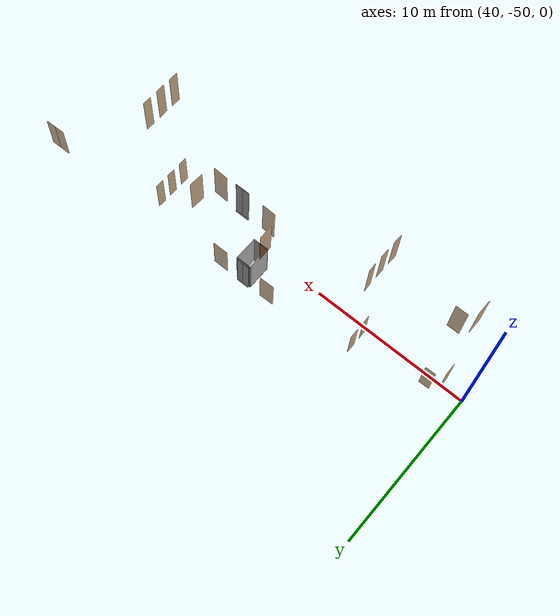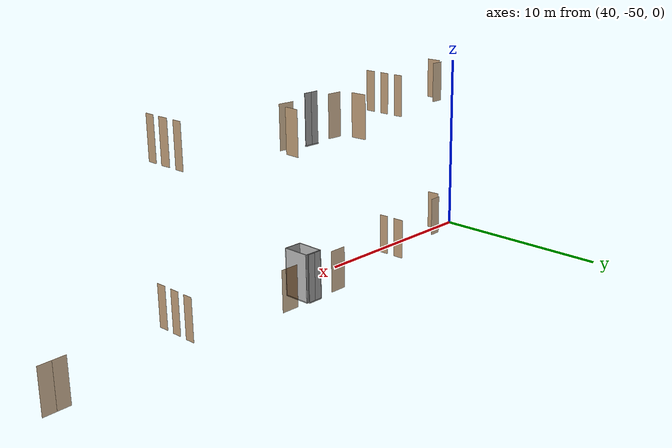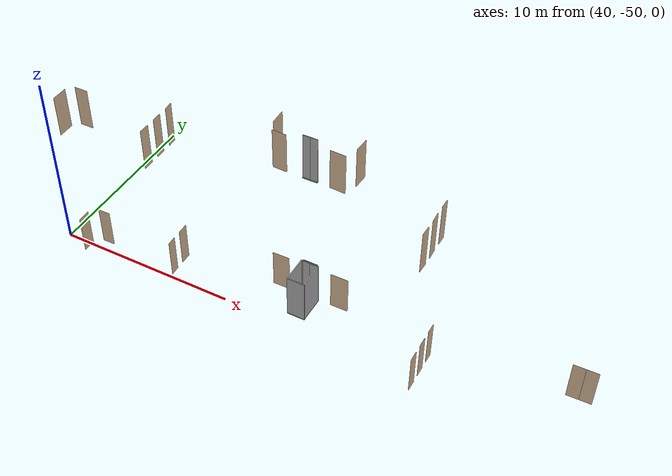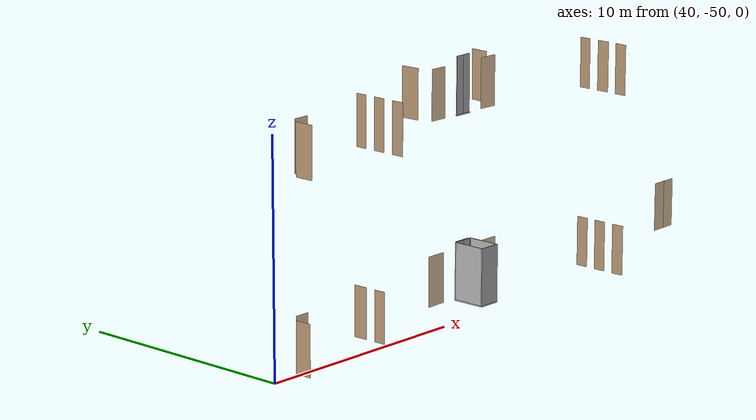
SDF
<sdf version="1.7">
 <world name="sim_world">
  <model name="TD1004CA">
   <pose>41.418329006971035 -50.19107119581413 0.0 0 0 1.5993775933365804</pose>
   <link name="right">
    <pose>0 0 1.11 0 0 0</pose>
    <visual name="right_visual">
     <geometry><box><size>0.7180729002156033 0.03 2.2</size></box></geometry>
     <material>
      <ambient>0.5 0.25 0 0.6</ambient>
      <diffuse>0.5 0.25 0 0.6</diffuse>
      <pbr><metal><metalness>0.0</metalness></metal></pbr>
     </material>
    </visual>
    <collision name="right_collision">
     <geometry><box><size>0.7180729002156033 0.03 2.2</size></box></geometry>
     <surface><contact><collide_bitmask>0x02</collide_bitmask></contact></surface>
    </collision>
    <inertial>
     <mass>50.0</mass>
     <inertia><ixx>20.17041666666667</ixx><iyy>22.315119541766872</iyy><izz>2.1522028751001994</izz></inertia>
    </inertial>
   </link>
   <joint name="right_joint" type="revolute">
    <parent>world</parent>
    <child>right</child>
    <axis><xyz>0 0 1</xyz><limit><lower>0</lower><upper>1.57</upper></limit></axis>
    <pose>0.36403645010780167 0 0 0 0 0</pose>
   </joint>
   <plugin name="register_component" filename="libregister_component.so">
    <component name="Door">
     <v_max_door>0.5</v_max_door>
     <a_max_door>0.3</a_max_door>
     <a_nom_door>0.15</a_nom_door>
     <dx_min_door>0.01</dx_min_door>
     <f_max_door>500.0</f_max_door>
     <ros_interface>true</ros_interface>
     <door name="TD1004CA" type="SwingDoor" left_joint_name="empty_joint" right_joint_name="right_joint"/>
    </component>
   </plugin>
  </model>
  <model name="TD1003CI">
   <pose>42.161714970803274 -49.42168282745601 0.0 0 0 -3.1108152612975006</pose>
   <link name="right">
    <pose>0 0 1.11 0 0 0</pose>
    <visual name="right_visual">
     <geometry><box><size>0.6661358327263901 0.03 2.2</size></box></geometry>
     <material>
      <ambient>0.5 0.25 0 0.6</ambient>
      <diffuse>0.5 0.25 0 0.6</diffuse>
      <pbr><metal><metalness>0.0</metalness></metal></pbr>
     </material>
    </visual>
    <collision name="right_collision">
     <geometry><box><size>0.6661358327263901 0.03 2.2</size></box></geometry>
     <surface><contact><collide_bitmask>0x02</collide_bitmask></contact></surface>
    </collision>
    <inertial>
     <mass>50.0</mass>
     <inertia><ixx>20.17041666666667</ixx><iyy>22.015570615175342</iyy><izz>1.8526539485086717</izz></inertia>
    </inertial>
   </link>
   <joint name="right_joint" type="revolute">
    <parent>world</parent>
    <child>right</child>
    <axis><xyz>0 0 1</xyz><limit><lower>0</lower><upper>1.57</upper></limit></axis>
    <pose>0.33806791636319505 0 0 0 0 0</pose>
   </joint>
   <plugin name="register_component" filename="libregister_component.so">
    <component name="Door">
     <v_max_door>0.5</v_max_door>
     <a_max_door>0.3</a_max_door>
     <a_nom_door>0.15</a_nom_door>
     <dx_min_door>0.01</dx_min_door>
     <f_max_door>500.0</f_max_door>
     <ros_interface>true</ros_interface>
     <door name="TD1003CI" type="SwingDoor" left_joint_name="empty_joint" right_joint_name="right_joint"/>
    </component>
   </plugin>
  </model>
  <model name="bano02">
   <pose>46.556525343689856 -48.4981205128844 0.0 0 0 1.5918249008363818</pose>
   <link name="right">
    <pose>0 0 1.11 0 0 0</pose>
    <visual name="right_visual">
     <geometry><box><size>0.6101771898056049 0.03 2.2</size></box></geometry>
     <material>
      <ambient>0.5 0.25 0 0.6</ambient>
      <diffuse>0.5 0.25 0 0.6</diffuse>
      <pbr><metal><metalness>0.0</metalness></metal></pbr>
     </material>
    </visual>
    <collision name="right_collision">
     <geometry><box><size>0.6101771898056049 0.03 2.2</size></box></geometry>
     <surface><contact><collide_bitmask>0x02</collide_bitmask></contact></surface>
    </collision>
    <inertial>
     <mass>50.0</mass>
     <inertia><ixx>20.17041666666667</ixx><iyy>21.717984178996108</iyy><izz>1.5550675123294382</izz></inertia>
    </inertial>
   </link>
   <joint name="right_joint" type="revolute">
    <parent>world</parent>
    <child>right</child>
    <axis><xyz>0 0 -1</xyz><limit><lower>0</lower><upper>1.57</upper></limit></axis>
    <pose>0.31008859490280244 0 0 0 0 0</pose>
   </joint>
   <plugin name="register_component" filename="libregister_component.so">
    <component name="Door">
     <v_max_door>0.5</v_max_door>
     <a_max_door>0.3</a_max_door>
     <a_nom_door>0.15</a_nom_door>
     <dx_min_door>0.01</dx_min_door>
     <f_max_door>500.0</f_max_door>
     <ros_interface>true</ros_interface>
     <door name="bano02" type="SwingDoor" left_joint_name="empty_joint" right_joint_name="right_joint"/>
    </component>
   </plugin>
  </model>
  <model name="bano03">
   <pose>46.57414458197455 -49.527454369388025 0.0 0 0 1.6131373529821114</pose>
   <link name="right">
    <pose>0 0 1.11 0 0 0</pose>
    <visual name="right_visual">
     <geometry><box><size>0.5144235144770443 0.03 2.2</size></box></geometry>
     <material>
      <ambient>0.5 0.25 0 0.6</ambient>
      <diffuse>0.5 0.25 0 0.6</diffuse>
      <pbr><metal><metalness>0.0</metalness></metal></pbr>
     </material>
    </visual>
    <collision name="right_collision">
     <geometry><box><size>0.5144235144770443 0.03 2.2</size></box></geometry>
     <surface><contact><collide_bitmask>0x02</collide_bitmask></contact></surface>
    </collision>
    <inertial>
     <mass>50.0</mass>
     <inertia><ixx>20.17041666666667</ixx><iyy>21.269298134362145</iyy><izz>1.1063814676954742</izz></inertia>
    </inertial>
   </link>
   <joint name="right_joint" type="revolute">
    <parent>world</parent>
    <child>right</child>
    <axis><xyz>0 0 -1</xyz><limit><lower>0</lower><upper>1.57</upper></limit></axis>
    <pose>0.26221175723852214 0 0 0 0 0</pose>
   </joint>
   <plugin name="register_component" filename="libregister_component.so">
    <component name="Door">
     <v_max_door>0.5</v_max_door>
     <a_max_door>0.3</a_max_door>
     <a_nom_door>0.15</a_nom_door>
     <dx_min_door>0.01</dx_min_door>
     <f_max_door>500.0</f_max_door>
     <ros_interface>true</ros_interface>
     <door name="bano03" type="SwingDoor" left_joint_name="empty_joint" right_joint_name="right_joint"/>
    </component>
   </plugin>
  </model>
  <model name="bano05">
   <pose>52.06670083466635 -47.72443394818039 0.0 0 0 -3.1200870272772754</pose>
   <link name="right">
    <pose>0 0 1.11 0 0 0</pose>
    <visual name="right_visual">
     <geometry><box><size>0.9377301620501713 0.03 2.2</size></box></geometry>
     <material>
      <ambient>0.5 0.25 0 0.6</ambient>
      <diffuse>0.5 0.25 0 0.6</diffuse>
      <pbr><metal><metalness>0.0</metalness></metal></pbr>
     </material>
    </visual>
    <collision name="right_collision">
     <geometry><box><size>0.9377301620501713 0.03 2.2</size></box></geometry>
     <surface><contact><collide_bitmask>0x02</collide_bitmask></contact></surface>
    </collision>
    <inertial>
     <mass>50.0</mass>
     <inertia><ixx>20.17041666666667</ixx><iyy>23.830574403411006</iyy><izz>3.6676577367443364</izz></inertia>
    </inertial>
   </link>
   <joint name="right_joint" type="revolute">
    <parent>world</parent>
    <child>right</child>
    <axis><xyz>0 0 -1</xyz><limit><lower>0</lower><upper>1.57</upper></limit></axis>
    <pose>0.4738650810250857 0 0 0 0 0</pose>
   </joint>
   <plugin name="register_component" filename="libregister_component.so">
    <component name="Door">
     <v_max_door>0.5</v_max_door>
     <a_max_door>0.3</a_max_door>
     <a_nom_door>0.15</a_nom_door>
     <dx_min_door>0.01</dx_min_door>
     <f_max_door>500.0</f_max_door>
     <ros_interface>true</ros_interface>
     <door name="bano05" type="SwingDoor" left_joint_name="empty_joint" right_joint_name="right_joint"/>
    </component>
   </plugin>
  </model>
  <model name="bano06">
   <pose>55.41423266186635 -47.68037463002387 0.0 0 0 0.0023663209530105163</pose>
   <link name="right">
    <pose>0 0 1.11 0 0 0</pose>
    <visual name="right_visual">
     <geometry><box><size>0.976455656863217 0.03 2.2</size></box></geometry>
     <material>
      <ambient>0.5 0.25 0 0.6</ambient>
      <diffuse>0.5 0.25 0 0.6</diffuse>
      <pbr><metal><metalness>0.0</metalness></metal></pbr>
     </material>
    </visual>
    <collision name="right_collision">
     <geometry><box><size>0.976455656863217 0.03 2.2</size></box></geometry>
     <surface><contact><collide_bitmask>0x02</collide_bitmask></contact></surface>
    </collision>
    <inertial>
     <mass>50.0</mass>
     <inertia><ixx>20.17041666666667</ixx><iyy>24.139440207584073</iyy><izz>3.9765235409174027</izz></inertia>
    </inertial>
   </link>
   <joint name="right_joint" type="revolute">
    <parent>world</parent>
    <child>right</child>
    <axis><xyz>0 0 1</xyz><limit><lower>0</lower><upper>1.57</upper></limit></axis>
    <pose>0.4932278284316085 0 0 0 0 0</pose>
   </joint>
   <plugin name="register_component" filename="libregister_component.so">
    <component name="Door">
     <v_max_door>0.5</v_max_door>
     <a_max_door>0.3</a_max_door>
     <a_nom_door>0.15</a_nom_door>
     <dx_min_door>0.01</dx_min_door>
     <f_max_door>500.0</f_max_door>
     <ros_interface>true</ros_interface>
     <door name="bano06" type="SwingDoor" left_joint_name="empty_joint" right_joint_name="right_joint"/>
    </component>
   </plugin>
  </model>
  <model name="bano08">
   <pose>60.78976126052451 -48.53715217578514 0.0 0 0 1.5717737241623335</pose>
   <link name="right">
    <pose>0 0 1.11 0 0 0</pose>
    <visual name="right_visual">
     <geometry><box><size>0.5411345257741597 0.03 2.2</size></box></geometry>
     <material>
      <ambient>0.5 0.25 0 0.6</ambient>
      <diffuse>0.5 0.25 0 0.6</diffuse>
      <pbr><metal><metalness>0.0</metalness></metal></pbr>
     </material>
    </visual>
    <collision name="right_collision">
     <geometry><box><size>0.5411345257741597 0.03 2.2</size></box></geometry>
     <surface><contact><collide_bitmask>0x02</collide_bitmask></contact></surface>
    </collision>
    <inertial>
     <mass>50.0</mass>
     <inertia><ixx>20.17041666666667</ixx><iyy>21.386777395770107</iyy><izz>1.2238607291034362</izz></inertia>
    </inertial>
   </link>
   <joint name="right_joint" type="revolute">
    <parent>world</parent>
    <child>right</child>
    <axis><xyz>0 0 1</xyz><limit><lower>0</lower><upper>1.57</upper></limit></axis>
    <pose>0.27556726288707983 0 0 0 0 0</pose>
   </joint>
   <plugin name="register_component" filename="libregister_component.so">
    <component name="Door">
     <v_max_door>0.5</v_max_door>
     <a_max_door>0.3</a_max_door>
     <a_nom_door>0.15</a_nom_door>
     <dx_min_door>0.01</dx_min_door>
     <f_max_door>500.0</f_max_door>
     <ros_interface>true</ros_interface>
     <door name="bano08" type="SwingDoor" left_joint_name="empty_joint" right_joint_name="right_joint"/>
    </component>
   </plugin>
  </model>
  <model name="bano09">
   <pose>60.79003059919892 -49.49870246589414 0.0 0 0 1.5707963267948966</pose>
   <link name="right">
    <pose>0 0 1.11 0 0 0</pose>
    <visual name="right_visual">
     <geometry><box><size>0.5286773488315057 0.03 2.2</size></box></geometry>
     <material>
      <ambient>0.5 0.25 0 0.6</ambient>
      <diffuse>0.5 0.25 0 0.6</diffuse>
      <pbr><metal><metalness>0.0</metalness></metal></pbr>
     </material>
    </visual>
    <collision name="right_collision">
     <geometry><box><size>0.5286773488315057 0.03 2.2</size></box></geometry>
     <surface><contact><collide_bitmask>0x02</collide_bitmask></contact></surface>
    </collision>
    <inertial>
     <mass>50.0</mass>
     <inertia><ixx>20.17041666666667</ixx><iyy>21.331248913197964</iyy><izz>1.16833224653129</izz></inertia>
    </inertial>
   </link>
   <joint name="right_joint" type="revolute">
    <parent>world</parent>
    <child>right</child>
    <axis><xyz>0 0 1</xyz><limit><lower>0</lower><upper>1.57</upper></limit></axis>
    <pose>0.2693386744157529 0 0 0 0 0</pose>
   </joint>
   <plugin name="register_component" filename="libregister_component.so">
    <component name="Door">
     <v_max_door>0.5</v_max_door>
     <a_max_door>0.3</a_max_door>
     <a_nom_door>0.15</a_nom_door>
     <dx_min_door>0.01</dx_min_door>
     <f_max_door>500.0</f_max_door>
     <ros_interface>true</ros_interface>
     <door name="bano09" type="SwingDoor" left_joint_name="empty_joint" right_joint_name="right_joint"/>
    </component>
   </plugin>
  </model>
  <model name="bano010">
   <pose>60.79214041881518 -50.483516884005795 0.0 0 0 1.5782784764305897</pose>
   <link name="right">
    <pose>0 0 1.11 0 0 0</pose>
    <visual name="right_visual">
     <geometry><box><size>0.553966080507234 0.03 2.2</size></box></geometry>
     <material>
      <ambient>0.5 0.25 0 0.6</ambient>
      <diffuse>0.5 0.25 0 0.6</diffuse>
      <pbr><metal><metalness>0.0</metalness></metal></pbr>
     </material>
    </visual>
    <collision name="right_collision">
     <geometry><box><size>0.553966080507234 0.03 2.2</size></box></geometry>
     <surface><contact><collide_bitmask>0x02</collide_bitmask></contact></surface>
    </collision>
    <inertial>
     <mass>50.0</mass>
     <inertia><ixx>20.17041666666667</ixx><iyy>21.44532674313562</iyy><izz>1.2824100764689468</izz></inertia>
    </inertial>
   </link>
   <joint name="right_joint" type="revolute">
    <parent>world</parent>
    <child>right</child>
    <axis><xyz>0 0 1</xyz><limit><lower>0</lower><upper>1.57</upper></limit></axis>
    <pose>0.281983040253617 0 0 0 0 0</pose>
   </joint>
   <plugin name="register_component" filename="libregister_component.so">
    <component name="Door">
     <v_max_door>0.5</v_max_door>
     <a_max_door>0.3</a_max_door>
     <a_nom_door>0.15</a_nom_door>
     <dx_min_door>0.01</dx_min_door>
     <f_max_door>500.0</f_max_door>
     <ros_interface>true</ros_interface>
     <door name="bano010" type="SwingDoor" left_joint_name="empty_joint" right_joint_name="right_joint"/>
    </component>
   </plugin>
  </model>
  <model name="TD0001EC1">
   <pose>68.0815447480926 -47.3850784408613 0.0 0 0 0.026534896190855972</pose>
   <link name="right">
    <pose>0.32252315344996946 0 1.11 0 0 0</pose>
    <visual name="right_visual">
     <geometry><box><size>0.6350463068999389 0.03 2.2</size></box></geometry>
     <material>
      <ambient>0.5 0.25 0 0.6</ambient>
      <diffuse>0.5 0.25 0 0.6</diffuse>
      <pbr><metal><metalness>0.0</metalness></metal></pbr>
     </material>
    </visual>
    <collision name="right_collision">
     <geometry><box><size>0.6350463068999389 0.03 2.2</size></box></geometry>
     <surface><contact><collide_bitmask>0x02</collide_bitmask></contact></surface>
    </collision>
    <inertial>
     <mass>50.0</mass>
     <inertia><ixx>20.17041666666667</ixx><iyy>21.847015882946888</iyy><izz>1.6840992162802142</izz></inertia>
    </inertial>
   </link>
   <joint name="right_joint" type="revolute">
    <parent>world</parent>
    <child>right</child>
    <axis><xyz>0 0 -1</xyz><limit><lower>0</lower><upper>1.57</upper></limit></axis>
    <pose>0.32252315344996946 0 0 0 0 0</pose>
   </joint>
   <link name="left">
    <pose>-0.32252315344996946 0 1.11 0 0 0</pose>
    <visual name="left_visual">
     <geometry><box><size>0.6350463068999389 0.03 2.2</size></box></geometry>
     <material>
      <ambient>0.5 0.25 0 0.6</ambient>
      <diffuse>0.5 0.25 0 0.6</diffuse>
      <pbr><metal><metalness>0.0</metalness></metal></pbr>
     </material>
    </visual>
    <collision name="left_collision">
     <geometry><box><size>0.6350463068999389 0.03 2.2</size></box></geometry>
     <surface><contact><collide_bitmask>0x02</collide_bitmask></contact></surface>
    </collision>
    <inertial>
     <mass>50.0</mass>
     <inertia><ixx>20.17041666666667</ixx><iyy>21.847015882946888</iyy><izz>1.6840992162802142</izz></inertia>
    </inertial>
   </link>
   <joint name="left_joint" type="revolute">
    <parent>world</parent>
    <child>left</child>
    <axis><xyz>0 0 -1</xyz><limit><lower>-1.57</lower><upper>0</upper></limit></axis>
    <pose>-0.32252315344996946 0 0 0 0 0</pose>
   </joint>
   <plugin name="register_component" filename="libregister_component.so">
    <component name="Door">
     <v_max_door>0.5</v_max_door>
     <a_max_door>0.3</a_max_door>
     <a_nom_door>0.15</a_nom_door>
     <dx_min_door>0.01</dx_min_door>
     <f_max_door>500.0</f_max_door>
     <ros_interface>true</ros_interface>
     <door name="TD0001EC1" type="DoubleSwingDoor" left_joint_name="left_joint" right_joint_name="right_joint"/>
    </component>
   </plugin>
  </model>
  <model name="TD1116CT">
   <pose>42.13165229551727 -49.469770444557135 8.0 0 0 -3.1414135882629983</pose>
   <link name="right">
    <pose>0 0 1.11 0 0 0</pose>
    <visual name="right_visual">
     <geometry><box><size>0.7019451403396002 0.03 2.2</size></box></geometry>
     <material>
      <ambient>0.5 0.25 0 0.6</ambient>
      <diffuse>0.5 0.25 0 0.6</diffuse>
      <pbr><metal><metalness>0.0</metalness></metal></pbr>
     </material>
    </visual>
    <collision name="right_collision">
     <geometry><box><size>0.7019451403396002 0.03 2.2</size></box></geometry>
     <surface><contact><collide_bitmask>0x02</collide_bitmask></contact></surface>
    </collision>
    <inertial>
     <mass>50.0</mass>
     <inertia><ixx>20.17041666666667</ixx><iyy>22.21969575019326</iyy><izz>2.056779083526588</izz></inertia>
    </inertial>
   </link>
   <joint name="right_joint" type="revolute">
    <parent>world</parent>
    <child>right</child>
    <axis><xyz>0 0 1</xyz><limit><lower>0</lower><upper>1.57</upper></limit></axis>
    <pose>0.3559725701698001 0 0 0 0 0</pose>
   </joint>
   <plugin name="register_component" filename="libregister_component.so">
    <component name="Door">
     <v_max_door>0.5</v_max_door>
     <a_max_door>0.3</a_max_door>
     <a_nom_door>0.15</a_nom_door>
     <dx_min_door>0.01</dx_min_door>
     <f_max_door>500.0</f_max_door>
     <ros_interface>true</ros_interface>
     <door name="TD1116CT" type="SwingDoor" left_joint_name="empty_joint" right_joint_name="right_joint"/>
    </component>
   </plugin>
  </model>
  <model name="TD0114CW">
   <pose>51.50515808954793 -46.74820920088596 8.0 0 0 1.6056425163225825</pose>
   <link name="right">
    <pose>0 0 1.11 0 0 0</pose>
    <visual name="right_visual">
     <geometry><box><size>0.8454856513248106 0.03 2.2</size></box></geometry>
     <material>
      <ambient>0.5 0.25 0 0.6</ambient>
      <diffuse>0.5 0.25 0 0.6</diffuse>
      <pbr><metal><metalness>0.0</metalness></metal></pbr>
     </material>
    </visual>
    <collision name="right_collision">
     <geometry><box><size>0.8454856513248106 0.03 2.2</size></box></geometry>
     <surface><contact><collide_bitmask>0x02</collide_bitmask></contact></surface>
    </collision>
    <inertial>
     <mass>50.0</mass>
     <inertia><ixx>20.17041666666667</ixx><iyy>23.145191610817253</iyy><izz>2.9822749441505803</izz></inertia>
    </inertial>
   </link>
   <joint name="right_joint" type="revolute">
    <parent>world</parent>
    <child>right</child>
    <axis><xyz>0 0 -1</xyz><limit><lower>0</lower><upper>1.57</upper></limit></axis>
    <pose>0.4277428256624053 0 0 0 0 0</pose>
   </joint>
   <plugin name="register_component" filename="libregister_component.so">
    <component name="Door">
     <v_max_door>0.5</v_max_door>
     <a_max_door>0.3</a_max_door>
     <a_nom_door>0.15</a_nom_door>
     <dx_min_door>0.01</dx_min_door>
     <f_max_door>500.0</f_max_door>
     <ros_interface>true</ros_interface>
     <door name="TD0114CW" type="SwingDoor" left_joint_name="empty_joint" right_joint_name="right_joint"/>
    </component>
   </plugin>
  </model>
  <model name="bano2">
   <pose>46.56346860594233 -48.55060622142908 8.0 0 0 1.6194787439386857</pose>
   <link name="right">
    <pose>0 0 1.11 0 0 0</pose>
    <visual name="right_visual">
     <geometry><box><size>0.47147375781130063 0.03 2.2</size></box></geometry>
     <material>
      <ambient>0.5 0.25 0 0.6</ambient>
      <diffuse>0.5 0.25 0 0.6</diffuse>
      <pbr><metal><metalness>0.0</metalness></metal></pbr>
     </material>
    </visual>
    <collision name="right_collision">
     <geometry><box><size>0.47147375781130063 0.03 2.2</size></box></geometry>
     <surface><contact><collide_bitmask>0x02</collide_bitmask></contact></surface>
    </collision>
    <inertial>
     <mass>50.0</mass>
     <inertia><ixx>20.17041666666667</ixx><iyy>21.092864601269625</iyy><izz>0.9299479346029541</izz></inertia>
    </inertial>
   </link>
   <joint name="right_joint" type="revolute">
    <parent>world</parent>
    <child>right</child>
    <axis><xyz>0 0 -1</xyz><limit><lower>0</lower><upper>1.57</upper></limit></axis>
    <pose>0.24073687890565032 0 0 0 0 0</pose>
   </joint>
   <plugin name="register_component" filename="libregister_component.so">
    <component name="Door">
     <v_max_door>0.5</v_max_door>
     <a_max_door>0.3</a_max_door>
     <a_nom_door>0.15</a_nom_door>
     <dx_min_door>0.01</dx_min_door>
     <f_max_door>500.0</f_max_door>
     <ros_interface>true</ros_interface>
     <door name="bano2" type="SwingDoor" left_joint_name="empty_joint" right_joint_name="right_joint"/>
    </component>
   </plugin>
  </model>
  <model name="bano3">
   <pose>46.57076823740256 -49.51671839086791 8.0 0 0 1.5714524499396092</pose>
   <link name="right">
    <pose>0 0 1.11 0 0 0</pose>
    <visual name="right_visual">
     <geometry><box><size>0.5075620440748119 0.03 2.2</size></box></geometry>
     <material>
      <ambient>0.5 0.25 0 0.6</ambient>
      <diffuse>0.5 0.25 0 0.6</diffuse>
      <pbr><metal><metalness>0.0</metalness></metal></pbr>
     </material>
    </visual>
    <collision name="right_collision">
     <geometry><box><size>0.5075620440748119 0.03 2.2</size></box></geometry>
     <surface><contact><collide_bitmask>0x02</collide_bitmask></contact></surface>
    </collision>
    <inertial>
     <mass>50.0</mass>
     <inertia><ixx>20.17041666666667</ixx><iyy>21.240080119105844</iyy><izz>1.077163452439172</izz></inertia>
    </inertial>
   </link>
   <joint name="right_joint" type="revolute">
    <parent>world</parent>
    <child>right</child>
    <axis><xyz>0 0 -1</xyz><limit><lower>0</lower><upper>1.57</upper></limit></axis>
    <pose>0.25878102203740594 0 0 0 0 0</pose>
   </joint>
   <plugin name="register_component" filename="libregister_component.so">
    <component name="Door">
     <v_max_door>0.5</v_max_door>
     <a_max_door>0.3</a_max_door>
     <a_nom_door>0.15</a_nom_door>
     <dx_min_door>0.01</dx_min_door>
     <f_max_door>500.0</f_max_door>
     <ros_interface>true</ros_interface>
     <door name="bano3" type="SwingDoor" left_joint_name="empty_joint" right_joint_name="right_joint"/>
    </component>
   </plugin>
  </model>
  <model name="bano4">
   <pose>46.563481016345676 -50.50018400156114 8.0 0 0 1.557244461655424</pose>
   <link name="right">
    <pose>0 0 1.11 0 0 0</pose>
    <visual name="right_visual">
     <geometry><box><size>0.5556274960112053 0.03 2.2</size></box></geometry>
     <material>
      <ambient>0.5 0.25 0 0.6</ambient>
      <diffuse>0.5 0.25 0 0.6</diffuse>
      <pbr><metal><metalness>0.0</metalness></metal></pbr>
     </material>
    </visual>
    <collision name="right_collision">
     <geometry><box><size>0.5556274960112053 0.03 2.2</size></box></geometry>
     <surface><contact><collide_bitmask>0x02</collide_bitmask></contact></surface>
    </collision>
    <inertial>
     <mass>50.0</mass>
     <inertia><ixx>20.17041666666667</ixx><iyy>21.45300797634868</iyy><izz>1.2900913096820084</izz></inertia>
    </inertial>
   </link>
   <joint name="right_joint" type="revolute">
    <parent>world</parent>
    <child>right</child>
    <axis><xyz>0 0 -1</xyz><limit><lower>0</lower><upper>1.57</upper></limit></axis>
    <pose>0.28281374800560266 0 0 0 0 0</pose>
   </joint>
   <plugin name="register_component" filename="libregister_component.so">
    <component name="Door">
     <v_max_door>0.5</v_max_door>
     <a_max_door>0.3</a_max_door>
     <a_nom_door>0.15</a_nom_door>
     <dx_min_door>0.01</dx_min_door>
     <f_max_door>500.0</f_max_door>
     <ros_interface>true</ros_interface>
     <door name="bano4" type="SwingDoor" left_joint_name="empty_joint" right_joint_name="right_joint"/>
    </component>
   </plugin>
  </model>
  <model name="bano5">
   <pose>52.148068485913775 -47.74097451939845 8.0 0 0 3.1065786581625146</pose>
   <link name="right">
    <pose>0 0 1.11 0 0 0</pose>
    <visual name="right_visual">
     <geometry><box><size>0.7657234564264961 0.03 2.2</size></box></geometry>
     <material>
      <ambient>0.5 0.25 0 0.6</ambient>
      <diffuse>0.5 0.25 0 0.6</diffuse>
      <pbr><metal><metalness>0.0</metalness></metal></pbr>
     </material>
    </visual>
    <collision name="right_collision">
     <geometry><box><size>0.7657234564264961 0.03 2.2</size></box></geometry>
     <surface><contact><collide_bitmask>0x02</collide_bitmask></contact></surface>
    </collision>
    <inertial>
     <mass>50.0</mass>
     <inertia><ixx>20.17041666666667</ixx><iyy>22.60971838217392</iyy><izz>2.44680171550725</izz></inertia>
    </inertial>
   </link>
   <joint name="right_joint" type="revolute">
    <parent>world</parent>
    <child>right</child>
    <axis><xyz>0 0 -1</xyz><limit><lower>0</lower><upper>1.57</upper></limit></axis>
    <pose>0.38786172821324805 0 0 0 0 0</pose>
   </joint>
   <plugin name="register_component" filename="libregister_component.so">
    <component name="Door">
     <v_max_door>0.5</v_max_door>
     <a_max_door>0.3</a_max_door>
     <a_nom_door>0.15</a_nom_door>
     <dx_min_door>0.01</dx_min_door>
     <f_max_door>500.0</f_max_door>
     <ros_interface>true</ros_interface>
     <door name="bano5" type="SwingDoor" left_joint_name="empty_joint" right_joint_name="right_joint"/>
    </component>
   </plugin>
  </model>
  <model name="bano6">
   <pose>55.234940433910175 -47.778894369654296 8.0 0 0 -0.04549059902802838</pose>
   <link name="right">
    <pose>0 0 1.11 0 0 0</pose>
    <visual name="right_visual">
     <geometry><box><size>0.8297533818517685 0.03 2.2</size></box></geometry>
     <material>
      <ambient>0.5 0.25 0 0.6</ambient>
      <diffuse>0.5 0.25 0 0.6</diffuse>
      <pbr><metal><metalness>0.0</metalness></metal></pbr>
     </material>
    </visual>
    <collision name="right_collision">
     <geometry><box><size>0.8297533818517685 0.03 2.2</size></box></geometry>
     <surface><contact><collide_bitmask>0x02</collide_bitmask></contact></surface>
    </collision>
    <inertial>
     <mass>50.0</mass>
     <inertia><ixx>20.17041666666667</ixx><iyy>23.035377811226866</iyy><izz>2.8724611445601953</izz></inertia>
    </inertial>
   </link>
   <joint name="right_joint" type="revolute">
    <parent>world</parent>
    <child>right</child>
    <axis><xyz>0 0 1</xyz><limit><lower>0</lower><upper>1.57</upper></limit></axis>
    <pose>0.41987669092588426 0 0 0 0 0</pose>
   </joint>
   <plugin name="register_component" filename="libregister_component.so">
    <component name="Door">
     <v_max_door>0.5</v_max_door>
     <a_max_door>0.3</a_max_door>
     <a_nom_door>0.15</a_nom_door>
     <dx_min_door>0.01</dx_min_door>
     <f_max_door>500.0</f_max_door>
     <ros_interface>true</ros_interface>
     <door name="bano6" type="SwingDoor" left_joint_name="empty_joint" right_joint_name="right_joint"/>
    </component>
   </plugin>
  </model>
  <model name="TD0115CW">
   <pose>55.88847397362011 -46.73766025088821 8.0 0 0 1.5145458440551605</pose>
   <link name="right">
    <pose>0 0 1.11 0 0 0</pose>
    <visual name="right_visual">
     <geometry><box><size>0.8030795554057361 0.03 2.2</size></box></geometry>
     <material>
      <ambient>0.5 0.25 0 0.6</ambient>
      <diffuse>0.5 0.25 0 0.6</diffuse>
      <pbr><metal><metalness>0.0</metalness></metal></pbr>
     </material>
    </visual>
    <collision name="right_collision">
     <geometry><box><size>0.8030795554057361 0.03 2.2</size></box></geometry>
     <surface><contact><collide_bitmask>0x02</collide_bitmask></contact></surface>
    </collision>
    <inertial>
     <mass>50.0</mass>
     <inertia><ixx>20.17041666666667</ixx><iyy>22.853903217961147</iyy><izz>2.690986551294478</izz></inertia>
    </inertial>
   </link>
   <joint name="right_joint" type="revolute">
    <parent>world</parent>
    <child>right</child>
    <axis><xyz>0 0 1</xyz><limit><lower>0</lower><upper>1.57</upper></limit></axis>
    <pose>0.40653977770286803 0 0 0 0 0</pose>
   </joint>
   <plugin name="register_component" filename="libregister_component.so">
    <component name="Door">
     <v_max_door>0.5</v_max_door>
     <a_max_door>0.3</a_max_door>
     <a_nom_door>0.15</a_nom_door>
     <dx_min_door>0.01</dx_min_door>
     <f_max_door>500.0</f_max_door>
     <ros_interface>true</ros_interface>
     <door name="TD0115CW" type="SwingDoor" left_joint_name="empty_joint" right_joint_name="right_joint"/>
    </component>
   </plugin>
  </model>
  <model name="bano8">
   <pose>60.781529853885814 -48.5473083155301 8.0 0 0 1.564084700622381</pose>
   <link name="right">
    <pose>0 0 1.11 0 0 0</pose>
    <visual name="right_visual">
     <geometry><box><size>0.5014238975936707 0.03 2.2</size></box></geometry>
     <material>
      <ambient>0.5 0.25 0 0.6</ambient>
      <diffuse>0.5 0.25 0 0.6</diffuse>
      <pbr><metal><metalness>0.0</metalness></metal></pbr>
     </material>
    </visual>
    <collision name="right_collision">
     <geometry><box><size>0.5014238975936707 0.03 2.2</size></box></geometry>
     <surface><contact><collide_bitmask>0x02</collide_bitmask></contact></surface>
    </collision>
    <inertial>
     <mass>50.0</mass>
     <inertia><ixx>20.17041666666667</ixx><iyy>21.21427468782512</iyy><izz>1.0513580211584497</izz></inertia>
    </inertial>
   </link>
   <joint name="right_joint" type="revolute">
    <parent>world</parent>
    <child>right</child>
    <axis><xyz>0 0 1</xyz><limit><lower>0</lower><upper>1.57</upper></limit></axis>
    <pose>0.25571194879683534 0 0 0 0 0</pose>
   </joint>
   <plugin name="register_component" filename="libregister_component.so">
    <component name="Door">
     <v_max_door>0.5</v_max_door>
     <a_max_door>0.3</a_max_door>
     <a_nom_door>0.15</a_nom_door>
     <dx_min_door>0.01</dx_min_door>
     <f_max_door>500.0</f_max_door>
     <ros_interface>true</ros_interface>
     <door name="bano8" type="SwingDoor" left_joint_name="empty_joint" right_joint_name="right_joint"/>
    </component>
   </plugin>
  </model>
  <model name="bano9">
   <pose>60.7830405702094 -49.525576080478196 8.0 0 0 1.6080317512604094</pose>
   <link name="right">
    <pose>0 0 1.11 0 0 0</pose>
    <visual name="right_visual">
     <geometry><box><size>0.5401273478474014 0.03 2.2</size></box></geometry>
     <material>
      <ambient>0.5 0.25 0 0.6</ambient>
      <diffuse>0.5 0.25 0 0.6</diffuse>
      <pbr><metal><metalness>0.0</metalness></metal></pbr>
     </material>
    </visual>
    <collision name="right_collision">
     <geometry><box><size>0.5401273478474014 0.03 2.2</size></box></geometry>
     <surface><contact><collide_bitmask>0x02</collide_bitmask></contact></surface>
    </collision>
    <inertial>
     <mass>50.0</mass>
     <inertia><ixx>20.17041666666667</ixx><iyy>21.38223979955279</iyy><izz>1.2193231328861156</izz></inertia>
    </inertial>
   </link>
   <joint name="right_joint" type="revolute">
    <parent>world</parent>
    <child>right</child>
    <axis><xyz>0 0 1</xyz><limit><lower>0</lower><upper>1.57</upper></limit></axis>
    <pose>0.2750636739237007 0 0 0 0 0</pose>
   </joint>
   <plugin name="register_component" filename="libregister_component.so">
    <component name="Door">
     <v_max_door>0.5</v_max_door>
     <a_max_door>0.3</a_max_door>
     <a_nom_door>0.15</a_nom_door>
     <dx_min_door>0.01</dx_min_door>
     <f_max_door>500.0</f_max_door>
     <ros_interface>true</ros_interface>
     <door name="bano9" type="SwingDoor" left_joint_name="empty_joint" right_joint_name="right_joint"/>
    </component>
   </plugin>
  </model>
  <model name="bano10">
   <pose>60.77464856298866 -50.481522979988085 8.0 0 0 1.5423201626319034</pose>
   <link name="right">
    <pose>0 0 1.11 0 0 0</pose>
    <visual name="right_visual">
     <geometry><box><size>0.5360457845933009 0.03 2.2</size></box></geometry>
     <material>
      <ambient>0.5 0.25 0 0.6</ambient>
      <diffuse>0.5 0.25 0 0.6</diffuse>
      <pbr><metal><metalness>0.0</metalness></metal></pbr>
     </material>
    </visual>
    <collision name="right_collision">
     <geometry><box><size>0.5360457845933009 0.03 2.2</size></box></geometry>
     <surface><contact><collide_bitmask>0x02</collide_bitmask></contact></surface>
    </collision>
    <inertial>
     <mass>50.0</mass>
     <inertia><ixx>20.17041666666667</ixx><iyy>21.36393784658437</iyy><izz>1.2010211799176982</izz></inertia>
    </inertial>
   </link>
   <joint name="right_joint" type="revolute">
    <parent>world</parent>
    <child>right</child>
    <axis><xyz>0 0 1</xyz><limit><lower>0</lower><upper>1.57</upper></limit></axis>
    <pose>0.27302289229665044 0 0 0 0 0</pose>
   </joint>
   <plugin name="register_component" filename="libregister_component.so">
    <component name="Door">
     <v_max_door>0.5</v_max_door>
     <a_max_door>0.3</a_max_door>
     <a_nom_door>0.15</a_nom_door>
     <dx_min_door>0.01</dx_min_door>
     <f_max_door>500.0</f_max_door>
     <ros_interface>true</ros_interface>
     <door name="bano10" type="SwingDoor" left_joint_name="empty_joint" right_joint_name="right_joint"/>
    </component>
   </plugin>
  </model>
  <model name="TD1117CI">
   <pose>41.458265439552534 -50.26171059557072 8.0 0 0 1.5729470502308434</pose>
   <link name="right">
    <pose>0 0 1.11 0 0 0</pose>
    <visual name="right_visual">
     <geometry><box><size>0.8438285463336463 0.03 2.2</size></box></geometry>
     <material>
      <ambient>0.5 0.25 0 0.6</ambient>
      <diffuse>0.5 0.25 0 0.6</diffuse>
      <pbr><metal><metalness>0.0</metalness></metal></pbr>
     </material>
    </visual>
    <collision name="right_collision">
     <geometry><box><size>0.8438285463336463 0.03 2.2</size></box></geometry>
     <surface><contact><collide_bitmask>0x02</collide_bitmask></contact></surface>
    </collision>
    <inertial>
     <mass>50.0</mass>
     <inertia><ixx>20.17041666666667</ixx><iyy>23.133527565031486</iyy><izz>2.9706108983648116</izz></inertia>
    </inertial>
   </link>
   <joint name="right_joint" type="revolute">
    <parent>world</parent>
    <child>right</child>
    <axis><xyz>0 0 1</xyz><limit><lower>0</lower><upper>1.57</upper></limit></axis>
    <pose>0.4269142731668232 0 0 0 0 0</pose>
   </joint>
   <plugin name="register_component" filename="libregister_component.so">
    <component name="Door">
     <v_max_door>0.5</v_max_door>
     <a_max_door>0.3</a_max_door>
     <a_nom_door>0.15</a_nom_door>
     <dx_min_door>0.01</dx_min_door>
     <f_max_door>500.0</f_max_door>
     <ros_interface>true</ros_interface>
     <door name="TD1117CI" type="SwingDoor" left_joint_name="empty_joint" right_joint_name="right_joint"/>
    </component>
   </plugin>
  </model>
  <model name="ShaftDoor_lift2td0_L1_lift2_door">
   <pose>53.75551043547694 -47.68096139483516 0.0 0 0 0.0</pose>
   <link name="right_door">
    <pose>0.2 0 1.25 0 0 0</pose>
    <visual name="right_door_visual">
     <geometry><box><size>0.4 0.03 2.5</size></box></geometry>
     <material>
      <ambient>0.5 0.5 0.5 1</ambient>
      <diffuse>0.7 0.7 0.7 1</diffuse>
      <specular>0.6 0.6 0.6 1</specular>
      <emissive>0.1 0.1 0.1 1</emissive>
     </material>
    </visual>
    <collision name="right_door_collision">
     <geometry><box><size>0.4 0.03 2.5</size></box></geometry>
     <surface><contact><collide_bitmask>0x02</collide_bitmask></contact></surface>
    </collision>
   </link>
   <link name="left_door">
    <pose>-0.2 0 1.25 0 0 0</pose>
    <visual name="left_door_visual">
     <geometry><box><size>0.4 0.03 2.5</size></box></geometry>
     <material>
      <ambient>0.5 0.5 0.5 1</ambient>
      <diffuse>0.7 0.7 0.7 1</diffuse>
      <specular>0.6 0.6 0.6 1</specular>
      <emissive>0.1 0.1 0.1 1</emissive>
     </material>
    </visual>
    <collision name="left_door_collision">
     <geometry><box><size>0.4 0.03 2.5</size></box></geometry>
     <surface><contact><collide_bitmask>0x02</collide_bitmask></contact></surface>
    </collision>
   </link>
   <joint name="right_joint" type="prismatic">
    <parent>world</parent>
    <child>right_door</child>
    <axis><xyz>1 0 0</xyz><limit><lower>0</lower><upper>0.4</upper></limit></axis>
   </joint>
   <joint name="left_joint" type="prismatic">
    <parent>world</parent>
    <child>left_door</child>
    <axis><xyz>1 0 0</xyz><limit><lower>-0.4</lower><upper>0</upper></limit></axis>
   </joint>
   <link name="ramp">
    <pose>0 0 -0.025 0 0 0</pose>
    <visual name="ramp_visual">
     <geometry><box><size>0.8 0.1 0.05</size></box></geometry>
     <material>
      <ambient>0.5 0.5 0.5 1</ambient>
      <diffuse>0.7 0.7 0.7 1</diffuse>
      <specular>0.6 0.6 0.6 1</specular>
      <emissive>0.1 0.1 0.1 1</emissive>
     </material>
    </visual>
    <collision name="ramp_collision">
     <geometry><box><size>0.8 0.1 0.05</size></box></geometry>
     <surface><contact><collide_bitmask>0x02</collide_bitmask></contact></surface>
    </collision>
   </link>
   <joint name="ramp_joint" type="fixed"><parent>world</parent><child>ramp</child></joint>
   <plugin name="register_component" filename="libregister_component.so">
    <component name="Door">
     <v_max_door>0.3</v_max_door>
     <a_max_door>0.2</a_max_door>
     <a_nom_door>0.1</a_nom_door>
     <dx_min_door>0.0001</dx_min_door>
     <f_max_door>35.0</f_max_door>
     <door left_joint_name="left_joint" name="ShaftDoor_lift2td0_L1_lift2_door" right_joint_name="right_joint" type="DoubleSlidingDoor"/>
    </component>
   </plugin>
  </model>
  <model name="ShaftDoor_lift2td0_L2_lift2_door">
   <pose>53.75551043547694 -47.68096139483516 8.0 0 0 0.0</pose>
   <link name="right_door">
    <pose>0.2 0 1.25 0 0 0</pose>
    <visual name="right_door_visual">
     <geometry><box><size>0.4 0.03 2.5</size></box></geometry>
     <material>
      <ambient>0.5 0.5 0.5 1</ambient>
      <diffuse>0.7 0.7 0.7 1</diffuse>
      <specular>0.6 0.6 0.6 1</specular>
      <emissive>0.1 0.1 0.1 1</emissive>
     </material>
    </visual>
    <collision name="right_door_collision">
     <geometry><box><size>0.4 0.03 2.5</size></box></geometry>
     <surface><contact><collide_bitmask>0x02</collide_bitmask></contact></surface>
    </collision>
   </link>
   <link name="left_door">
    <pose>-0.2 0 1.25 0 0 0</pose>
    <visual name="left_door_visual">
     <geometry><box><size>0.4 0.03 2.5</size></box></geometry>
     <material>
      <ambient>0.5 0.5 0.5 1</ambient>
      <diffuse>0.7 0.7 0.7 1</diffuse>
      <specular>0.6 0.6 0.6 1</specular>
      <emissive>0.1 0.1 0.1 1</emissive>
     </material>
    </visual>
    <collision name="left_door_collision">
     <geometry><box><size>0.4 0.03 2.5</size></box></geometry>
     <surface><contact><collide_bitmask>0x02</collide_bitmask></contact></surface>
    </collision>
   </link>
   <joint name="right_joint" type="prismatic">
    <parent>world</parent>
    <child>right_door</child>
    <axis><xyz>1 0 0</xyz><limit><lower>0</lower><upper>0.4</upper></limit></axis>
   </joint>
   <joint name="left_joint" type="prismatic">
    <parent>world</parent>
    <child>left_door</child>
    <axis><xyz>1 0 0</xyz><limit><lower>-0.4</lower><upper>0</upper></limit></axis>
   </joint>
   <link name="ramp">
    <pose>0 0 -0.025 0 0 0</pose>
    <visual name="ramp_visual">
     <geometry><box><size>0.8 0.1 0.05</size></box></geometry>
     <material>
      <ambient>0.5 0.5 0.5 1</ambient>
      <diffuse>0.7 0.7 0.7 1</diffuse>
      <specular>0.6 0.6 0.6 1</specular>
      <emissive>0.1 0.1 0.1 1</emissive>
     </material>
    </visual>
    <collision name="ramp_collision">
     <geometry><box><size>0.8 0.1 0.05</size></box></geometry>
     <surface><contact><collide_bitmask>0x02</collide_bitmask></contact></surface>
    </collision>
   </link>
   <joint name="ramp_joint" type="fixed"><parent>world</parent><child>ramp</child></joint>
   <plugin name="register_component" filename="libregister_component.so">
    <component name="Door">
     <v_max_door>0.3</v_max_door>
     <a_max_door>0.2</a_max_door>
     <a_nom_door>0.1</a_nom_door>
     <dx_min_door>0.0001</dx_min_door>
     <f_max_door>35.0</f_max_door>
     <door left_joint_name="left_joint" name="ShaftDoor_lift2td0_L2_lift2_door" right_joint_name="right_joint" type="DoubleSlidingDoor"/>
    </component>
   </plugin>
  </model>
  <model name="lift2td0">
   <link name="platform">
    <inertial><mass>1200</mass><inertia><ixx>100.25</ixx><iyy>225.25</iyy><izz>325.0</izz></inertia></inertial>
    <visual name="floor_visual">
     <pose>0 0 -0.025 0 0 0</pose>
     <geometry><box><size>1.0 1.5 0.05</size></box></geometry>
     <material>
      <ambient>0.5 0.5 0.5 1</ambient>
      <diffuse>0.7 0.7 0.7 1</diffuse>
      <specular>0.6 0.6 0.6 1</specular>
      <emissive>0.1 0.1 0.1 1</emissive>
     </material>
    </visual>
    <collision name="floor_collision">
     <pose>0 0 -0.025 0 0 0</pose>
     <geometry><box><size>1.0 1.5 0.05</size></box></geometry>
     <surface><contact><collide_bitmask>0x01</collide_bitmask></contact></surface>
    </collision>
    <visual name="frontwall1_visual">
     <pose>-0.45 0.725 1.25 0 0 0</pose>
     <geometry><box><size>0.09999999999999998 0.05 2.5</size></box></geometry>
     <material>
      <ambient>0.5 0.5 0.5 1</ambient>
      <diffuse>0.7 0.7 0.7 1</diffuse>
      <specular>0.6 0.6 0.6 1</specular>
      <emissive>0.1 0.1 0.1 1</emissive>
     </material>
    </visual>
    <collision name="frontwall1_collision">
     <pose>-0.45 0.725 1.25 0 0 0</pose>
     <geometry><box><size>0.09999999999999998 0.05 2.5</size></box></geometry>
     <surface><contact><collide_bitmask>0x01</collide_bitmask></contact></surface>
    </collision>
    <visual name="frontwall2_visual">
     <pose>0.45 0.725 1.25 0 0 0</pose>
     <geometry><box><size>0.09999999999999998 0.05 2.5</size></box></geometry>
     <material>
      <ambient>0.5 0.5 0.5 1</ambient>
      <diffuse>0.7 0.7 0.7 1</diffuse>
      <specular>0.6 0.6 0.6 1</specular>
      <emissive>0.1 0.1 0.1 1</emissive>
     </material>
    </visual>
    <collision name="frontwall2_collision">
     <pose>0.45 0.725 1.25 0 0 0</pose>
     <geometry><box><size>0.09999999999999998 0.05 2.5</size></box></geometry>
     <surface><contact><collide_bitmask>0x01</collide_bitmask></contact></surface>
    </collision>
    <visual name="backwall1_visual">
     <pose>0.0 -0.725 1.25 0 0 0</pose>
     <geometry><box><size>1.0 0.05 2.5</size></box></geometry>
     <material>
      <ambient>0.5 0.5 0.5 1</ambient>
      <diffuse>0.7 0.7 0.7 1</diffuse>
      <specular>0.6 0.6 0.6 1</specular>
      <emissive>0.1 0.1 0.1 1</emissive>
     </material>
    </visual>
    <collision name="backwall1_collision">
     <pose>0.0 -0.725 1.25 0 0 0</pose>
     <geometry><box><size>1.0 0.05 2.5</size></box></geometry>
     <surface><contact><collide_bitmask>0x01</collide_bitmask></contact></surface>
    </collision>
    <visual name="leftwall1_visual">
     <pose>-0.475 0.0 1.25 0 0 1.5707963267948966</pose>
     <geometry><box><size>1.4 0.05 2.5</size></box></geometry>
     <material>
      <ambient>0.5 0.5 0.5 1</ambient>
      <diffuse>0.7 0.7 0.7 1</diffuse>
      <specular>0.6 0.6 0.6 1</specular>
      <emissive>0.1 0.1 0.1 1</emissive>
     </material>
    </visual>
    <collision name="leftwall1_collision">
     <pose>-0.475 0.0 1.25 0 0 1.5707963267948966</pose>
     <geometry><box><size>1.4 0.05 2.5</size></box></geometry>
     <surface><contact><collide_bitmask>0x01</collide_bitmask></contact></surface>
    </collision>
    <visual name="rightwall1_visual">
     <pose>0.475 0.0 1.25 0 0 1.5707963267948966</pose>
     <geometry><box><size>1.4 0.05 2.5</size></box></geometry>
     <material>
      <ambient>0.5 0.5 0.5 1</ambient>
      <diffuse>0.7 0.7 0.7 1</diffuse>
      <specular>0.6 0.6 0.6 1</specular>
      <emissive>0.1 0.1 0.1 1</emissive>
     </material>
    </visual>
    <collision name="rightwall1_collision">
     <pose>0.475 0.0 1.25 0 0 1.5707963267948966</pose>
     <geometry><box><size>1.4 0.05 2.5</size></box></geometry>
     <surface><contact><collide_bitmask>0x01</collide_bitmask></contact></surface>
    </collision>
   </link>
   <joint name="cabin_joint" type="prismatic">
    <parent>world</parent>
    <child>platform</child>
    <axis><xyz>0 0 1</xyz></axis>
   </joint>
   <model name="CabinDoor_lift2td0_lift2_door">
    <pose>0.0 0.725 0 0 0 0.0</pose>
    <link name="right_door">
     <pose>0.2 0 1.25 0 0 0</pose>
     <visual name="right_door_visual">
      <geometry><box><size>0.4 0.03 2.5</size></box></geometry>
      <material>
       <ambient>0.5 0.5 0.5 1</ambient>
       <diffuse>0.7 0.7 0.7 1</diffuse>
       <specular>0.6 0.6 0.6 1</specular>
       <emissive>0.1 0.1 0.1 1</emissive>
      </material>
     </visual>
     <collision name="right_door_collision">
      <geometry><box><size>0.4 0.03 2.5</size></box></geometry>
      <surface><contact><collide_bitmask>0x02</collide_bitmask></contact></surface>
     </collision>
    </link>
    <link name="left_door">
     <pose>-0.2 0 1.25 0 0 0</pose>
     <visual name="left_door_visual">
      <geometry><box><size>0.4 0.03 2.5</size></box></geometry>
      <material>
       <ambient>0.5 0.5 0.5 1</ambient>
       <diffuse>0.7 0.7 0.7 1</diffuse>
       <specular>0.6 0.6 0.6 1</specular>
       <emissive>0.1 0.1 0.1 1</emissive>
      </material>
     </visual>
     <collision name="left_door_collision">
      <geometry><box><size>0.4 0.03 2.5</size></box></geometry>
      <surface><contact><collide_bitmask>0x02</collide_bitmask></contact></surface>
     </collision>
    </link>
    <plugin name="register_component" filename="libregister_component.so">
     <component name="Door">
      <v_max_door>0.3</v_max_door>
      <a_max_door>0.2</a_max_door>
      <a_nom_door>0.1</a_nom_door>
      <dx_min_door>0.0001</dx_min_door>
      <f_max_door>35.0</f_max_door>
      <door left_joint_name="CabinDoor_lift2td0_lift2_door_left_joint" name="CabinDoor_lift2td0_lift2_door" right_joint_name="CabinDoor_lift2td0_lift2_door_right_joint" type="DoubleSlidingDoor"/>
     </component>
    </plugin>
   </model>
   <joint name="CabinDoor_lift2td0_lift2_door_right_joint" type="prismatic">
    <parent>platform</parent>
    <child>CabinDoor_lift2td0_lift2_door::right_door</child>
    <axis><xyz>1 0 0</xyz><limit><lower>0</lower><upper>0.4</upper></limit></axis>
   </joint>
   <joint name="CabinDoor_lift2td0_lift2_door_left_joint" type="prismatic">
    <parent>platform</parent>
    <child>CabinDoor_lift2td0_lift2_door::left_door</child>
    <axis><xyz>1 0 0</xyz><limit><lower>-0.4</lower><upper>0</upper></limit></axis>
   </joint>
   <plugin name="register_component" filename="libregister_component.so">
    <component name="Lift">
     <lift_name>lift2td0</lift_name>
     <floor name="L1" elevation="0.0">
      <door_pair cabin_door="CabinDoor_lift2td0_lift2_door" shaft_door="ShaftDoor_lift2td0_L1_lift2_door"/>
     </floor>
     <floor name="L2" elevation="8.0">
      <door_pair cabin_door="CabinDoor_lift2td0_lift2_door" shaft_door="ShaftDoor_lift2td0_L2_lift2_door"/>
     </floor>
     <initial_floor>L1</initial_floor>
     <v_max_cabin>2.0</v_max_cabin>
     <a_max_cabin>1.2</a_max_cabin>
     <a_nom_cabin>1.0</a_nom_cabin>
     <dx_min_cabin>0.001</dx_min_cabin>
     <f_max_cabin>25323.0</f_max_cabin>
     <cabin_joint_name>cabin_joint</cabin_joint_name>
    </component>
   </plugin>
   <pose>53.75551043547694 -48.480961394835155 0 0 0 0.0</pose>
  </model>
 </world>
</sdf>
